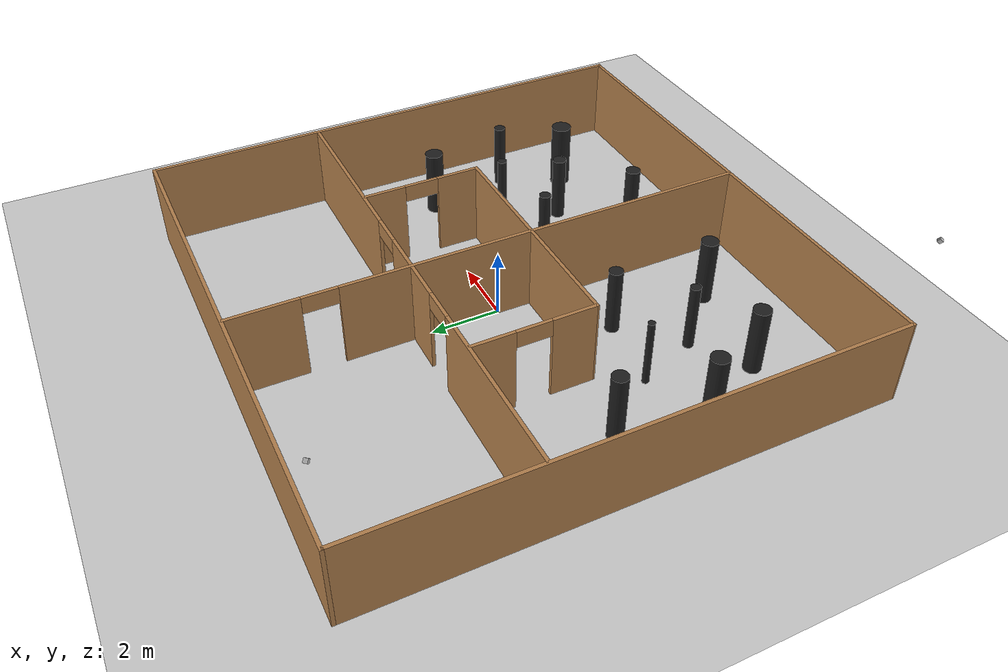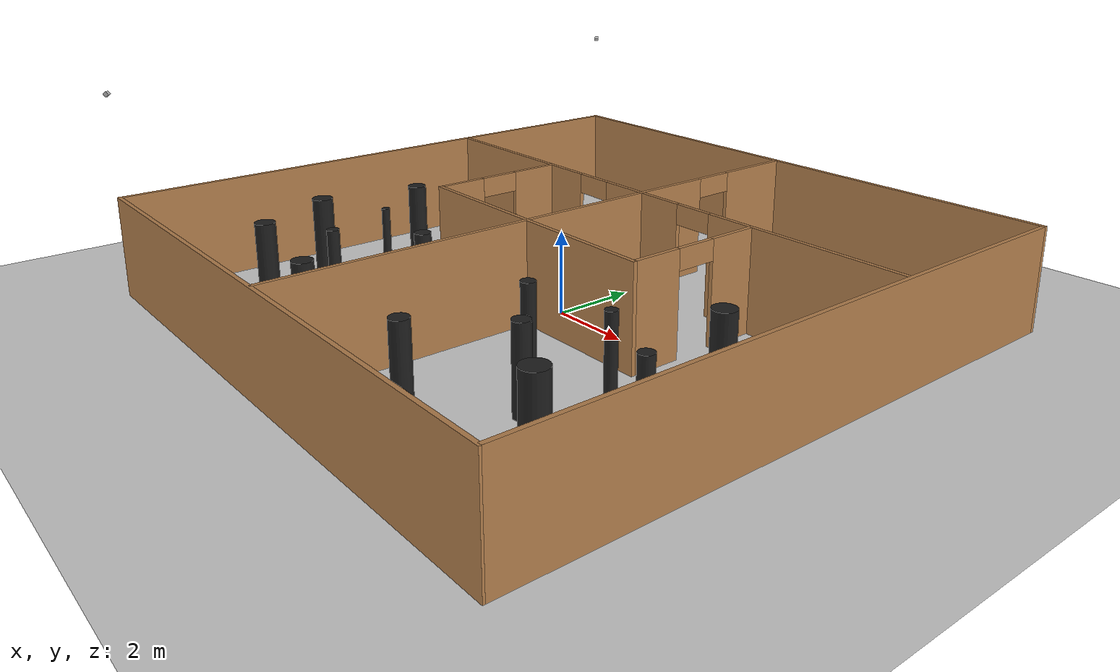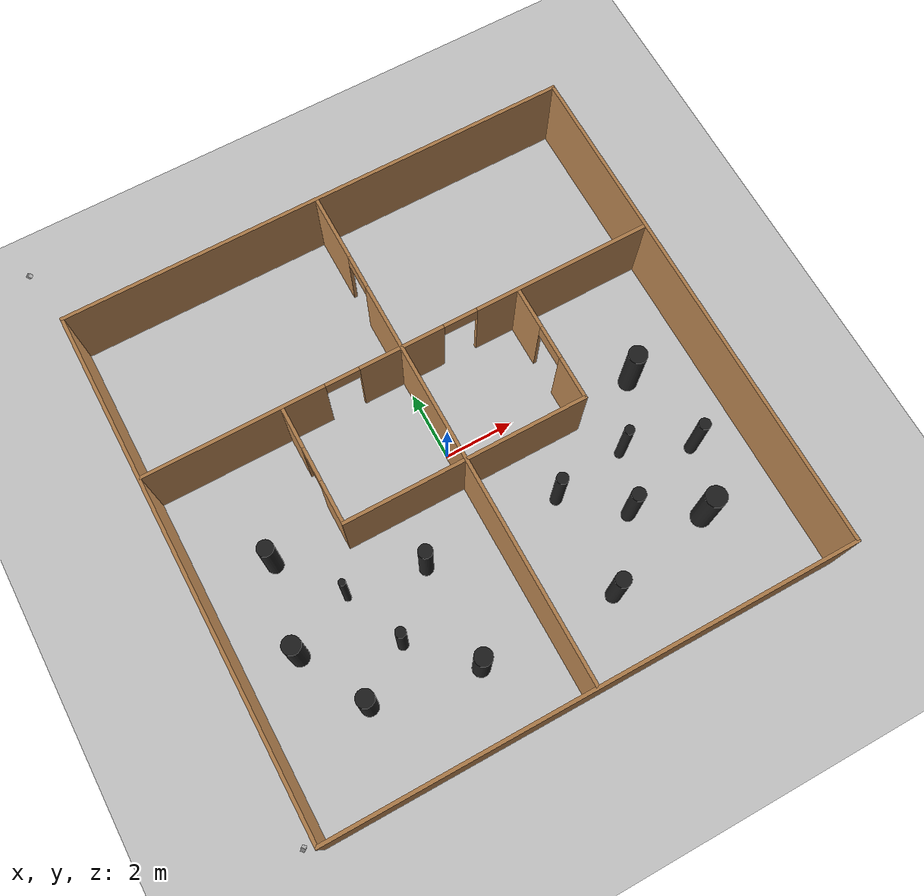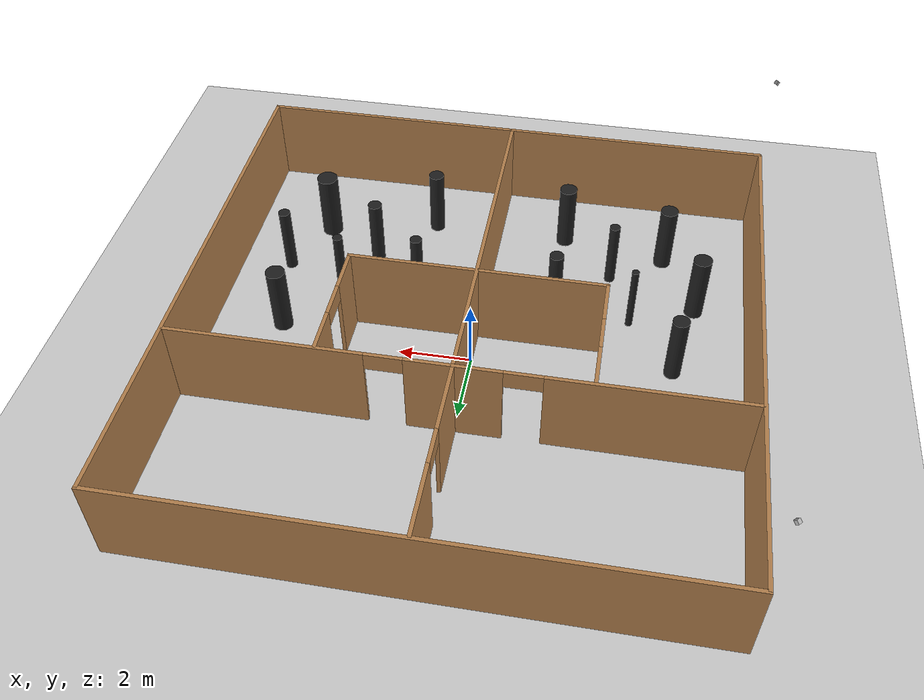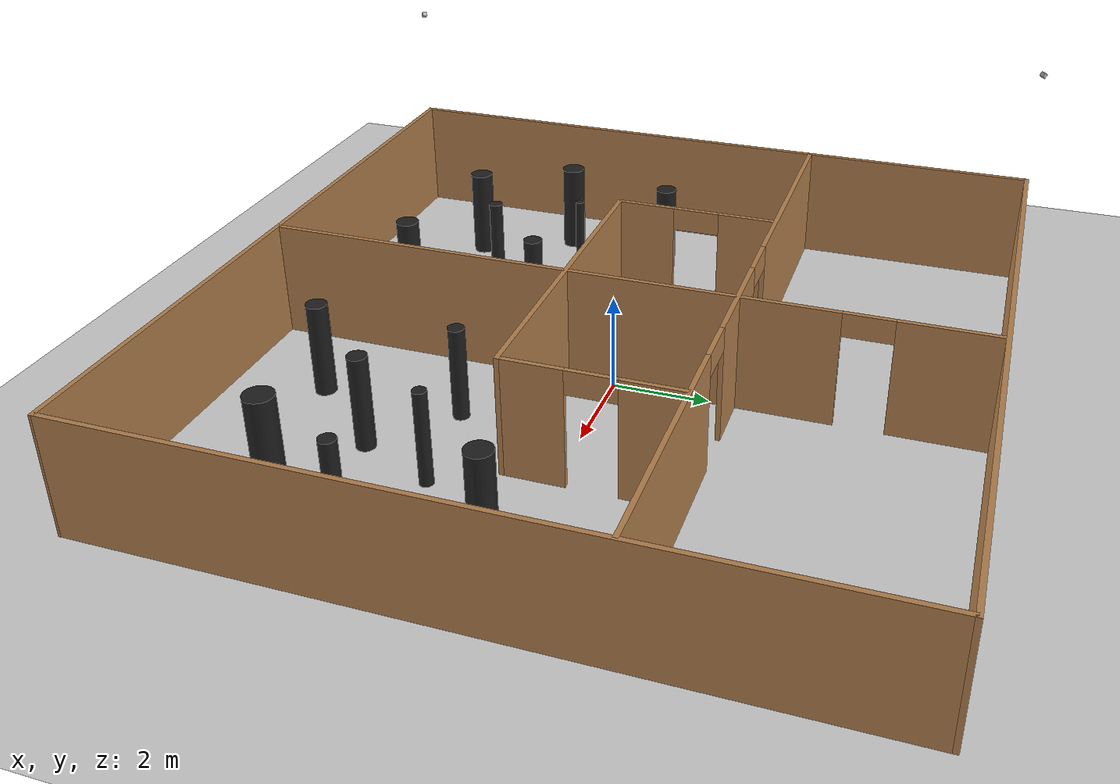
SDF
<sdf version="1.6">
 <world name="default">
  <model name="ground_plane">
   <static>1</static>
   <link name="link">
    <collision name="collision">
     <geometry><plane><normal>0 0 1</normal><size>100 100</size></plane></geometry>
     <surface><friction><ode><mu>100</mu><mu2>50</mu2></ode></friction></surface>
    </collision>
    <visual name="visual">
     <cast_shadows>0</cast_shadows>
     <geometry><plane><normal>0 0 1</normal><size>100 100</size></plane></geometry>
     <material>
      <script><uri>file://media/materials/scripts/gazebo.material</uri><name>Gazebo/Grey</name></script>
     </material>
    </visual>
   </link>
  </model>
  <model name="building">
   <link name="Wall_0">
    <collision name="Wall_0_Collision">
     <geometry><box><size>15.1 0.1 2.5</size></box></geometry>
     <pose>0 0 1.25 0 -0 0</pose>
    </collision>
    <visual name="Wall_0_Visual">
     <pose>0 0 1.25 0 -0 0</pose>
     <geometry><box><size>15.1 0.1 2.5</size></box></geometry>
     <material>
      <script><uri>file://media/materials/scripts/gazebo.material</uri><name>Gazebo/Wood</name></script>
      <ambient>1 1 1 1</ambient>
     </material>
     <meta><layer>0</layer></meta>
    </visual>
    <pose>0 -7.5 0 0 -0 0</pose>
   </link>
   <link name="Wall_1">
    <collision name="Wall_1_Collision">
     <geometry><box><size>15 0.1 2.5</size></box></geometry>
     <pose>0 0 1.25 0 -0 0</pose>
    </collision>
    <visual name="Wall_1_Visual">
     <pose>0 0 1.25 0 -0 0</pose>
     <geometry><box><size>15 0.1 2.5</size></box></geometry>
     <material>
      <script><uri>file://media/materials/scripts/gazebo.material</uri><name>Gazebo/Wood</name></script>
      <ambient>1 1 1 1</ambient>
     </material>
     <meta><layer>0</layer></meta>
    </visual>
    <pose>7.5 0 0 0 -0 1.5708</pose>
   </link>
   <link name="Wall_10">
    <collision name="Wall_10_Collision">
     <geometry><box><size>7.1 0.1 2.5</size></box></geometry>
     <pose>0 0 1.25 0 -0 0</pose>
    </collision>
    <visual name="Wall_10_Visual">
     <pose>0 0 1.25 0 -0 0</pose>
     <geometry><box><size>7.1 0.1 2.5</size></box></geometry>
     <material>
      <script><uri>file://media/materials/scripts/gazebo.material</uri><name>Gazebo/Wood</name></script>
      <ambient>1 1 1 1</ambient>
     </material>
     <meta><layer>0</layer></meta>
    </visual>
    <pose>0 -1 0 0 -0 0</pose>
   </link>
   <link name="Wall_15a">
    <collision name="Wall_15a_Collision">
     <geometry><box><size>1.25 0.1 2.5</size></box></geometry>
     <pose>0 0 1.25 0 -0 0</pose>
    </collision>
    <visual name="Wall_15a_Visual">
     <pose>0 0 1.25 0 -0 0</pose>
     <geometry><box><size>1.25 0.1 2.5</size></box></geometry>
     <material>
      <script><uri>file://media/materials/scripts/gazebo.material</uri><name>Gazebo/Wood</name></script>
      <ambient>1 1 1 1</ambient>
     </material>
     <meta><layer>0</layer></meta>
    </visual>
    <pose>3.5 1.875 0 0 -0 -1.5708</pose>
   </link>
   <link name="Wall_15b">
    <collision name="Wall_15b_Collision">
     <geometry><box><size>1.25 0.1 2.5</size></box></geometry>
     <pose>0 0 1.25 0 -0 0</pose>
    </collision>
    <visual name="Wall_15b_Visual">
     <pose>0 0 1.25 0 -0 0</pose>
     <geometry><box><size>1.25 0.1 2.5</size></box></geometry>
     <material>
      <script><uri>file://media/materials/scripts/gazebo.material</uri><name>Gazebo/Wood</name></script>
      <ambient>1 1 1 1</ambient>
     </material>
     <meta><layer>0</layer></meta>
    </visual>
    <pose>3.5 -0.375 0 0 -0 -1.5708</pose>
   </link>
   <link name="Wall_15c">
    <collision name="Wall_15c_Collision">
     <geometry><box><size>1.0 0.1 0.5</size></box></geometry>
     <pose>0 0 2.25 0 -0 0</pose>
    </collision>
    <visual name="Wall_15c_Visual">
     <pose>0 0 2.25 0 -0 0</pose>
     <geometry><box><size>1.0 0.1 0.5</size></box></geometry>
     <material>
      <script><uri>file://media/materials/scripts/gazebo.material</uri><name>Gazebo/Wood</name></script>
      <ambient>1 1 1 1</ambient>
     </material>
     <meta><layer>0</layer></meta>
    </visual>
    <pose>3.5 0.75 0 0 -0 -1.5708</pose>
   </link>
   <link name="Wall_17a">
    <collision name="Wall_17a_Collision">
     <geometry><box><size>5.25 0.1 2.5</size></box></geometry>
     <pose>0 0 1.25 0 -0 0</pose>
    </collision>
    <visual name="Wall_17a_Visual">
     <pose>0 0 1.25 0 -0 0</pose>
     <geometry><box><size>5.25 0.1 2.5</size></box></geometry>
     <material>
      <script><uri>file://media/materials/scripts/gazebo.material</uri><name>Gazebo/Wood</name></script>
      <ambient>1 1 1 1</ambient>
     </material>
     <meta><layer>0</layer></meta>
    </visual>
    <pose>-4.875 2.5 0 0 -0 0</pose>
   </link>
   <link name="Wall_17b">
    <collision name="Wall_17b_Collision">
     <geometry><box><size>5.25 0.1 2.5</size></box></geometry>
     <pose>0 0 1.25 0 -0 0</pose>
    </collision>
    <visual name="Wall_17b_Visual">
     <pose>0 0 1.25 0 -0 0</pose>
     <geometry><box><size>5.25 0.1 2.5</size></box></geometry>
     <material>
      <script><uri>file://media/materials/scripts/gazebo.material</uri><name>Gazebo/Wood</name></script>
      <ambient>1 1 1 1</ambient>
     </material>
     <meta><layer>0</layer></meta>
    </visual>
    <pose>4.875 2.5 0 0 -0 0</pose>
   </link>
   <link name="Wall_17c">
    <collision name="Wall_17c_Collision">
     <geometry><box><size>2.5 0.1 2.5</size></box></geometry>
     <pose>0 0 1.25 0 -0 0</pose>
    </collision>
    <visual name="Wall_17c_Visual">
     <pose>0 0 1.25 0 -0 0</pose>
     <geometry><box><size>2.5 0.1 2.5</size></box></geometry>
     <material>
      <script><uri>file://media/materials/scripts/gazebo.material</uri><name>Gazebo/Wood</name></script>
      <ambient>1 1 1 1</ambient>
     </material>
     <meta><layer>0</layer></meta>
    </visual>
    <pose>0 2.5 0 0 -0 0</pose>
   </link>
   <link name="Wall_17d">
    <collision name="Wall_17d_Collision">
     <geometry><box><size>1 0.1 0.5</size></box></geometry>
     <pose>0 0 2.25 0 -0 0</pose>
    </collision>
    <visual name="Wall_17d_Visual">
     <pose>0 0 2.25 0 -0 0</pose>
     <geometry><box><size>1 0.1 0.5</size></box></geometry>
     <material>
      <script><uri>file://media/materials/scripts/gazebo.material</uri><name>Gazebo/Wood</name></script>
      <ambient>1 1 1 1</ambient>
     </material>
     <meta><layer>0</layer></meta>
    </visual>
    <pose>-1.75 2.5 0 0 -0 0</pose>
   </link>
   <link name="Wall_17e">
    <collision name="Wall_17e_Collision">
     <geometry><box><size>1 0.1 0.5</size></box></geometry>
     <pose>0 0 2.25 0 -0 0</pose>
    </collision>
    <visual name="Wall_17e_Visual">
     <pose>0 0 2.25 0 -0 0</pose>
     <geometry><box><size>1 0.1 0.5</size></box></geometry>
     <material>
      <script><uri>file://media/materials/scripts/gazebo.material</uri><name>Gazebo/Wood</name></script>
      <ambient>1 1 1 1</ambient>
     </material>
     <meta><layer>0</layer></meta>
    </visual>
    <pose>1.75 2.5 0 0 -0 0</pose>
   </link>
   <link name="Wall_2">
    <collision name="Wall_2_Collision">
     <geometry><box><size>15.1 0.1 2.5</size></box></geometry>
     <pose>0 0 1.25 0 -0 0</pose>
    </collision>
    <visual name="Wall_2_Visual">
     <pose>0 0 1.25 0 -0 0</pose>
     <geometry><box><size>15.1 0.1 2.5</size></box></geometry>
     <material>
      <script><uri>file://media/materials/scripts/gazebo.material</uri><name>Gazebo/Wood</name></script>
      <ambient>1 1 1 1</ambient>
     </material>
     <meta><layer>0</layer></meta>
    </visual>
    <pose>0 7.5 0 0 -0 3.14159</pose>
   </link>
   <link name="Wall_3">
    <collision name="Wall_3_Collision">
     <geometry><box><size>15 0.1 2.5</size></box></geometry>
     <pose>0 0 1.25 0 -0 0</pose>
    </collision>
    <visual name="Wall_3_Visual">
     <pose>0 0 1.25 0 -0 0</pose>
     <geometry><box><size>15 0.1 2.5</size></box></geometry>
     <material>
      <script><uri>file://media/materials/scripts/gazebo.material</uri><name>Gazebo/Wood</name></script>
      <ambient>1 1 1 1</ambient>
     </material>
     <meta><layer>0</layer></meta>
    </visual>
    <pose>-7.5 0 0 0 -0 -1.5708</pose>
   </link>
   <link name="Wall_5a">
    <collision name="Wall_5a_Collision">
     <geometry><box><size>12 0.1 2.5</size></box></geometry>
     <pose>0 0 1.25 0 -0 0</pose>
    </collision>
    <visual name="Wall_5a_Visual">
     <pose>0 0 1.25 0 -0 0</pose>
     <geometry><box><size>12 0.1 2.5</size></box></geometry>
     <material>
      <script><uri>file://media/materials/scripts/gazebo.material</uri><name>Gazebo/Wood</name></script>
      <ambient>1 1 1 1</ambient>
     </material>
     <meta><layer>0</layer></meta>
    </visual>
    <pose>-0 -1.5 0 0 -0 -1.5708</pose>
   </link>
   <link name="Wall_5b">
    <collision name="Wall_5b_Collision">
     <geometry><box><size>2 0.1 2.5</size></box></geometry>
     <pose>0 0 1.25 0 -0 0</pose>
    </collision>
    <visual name="Wall_5b_Visual">
     <pose>0 0 1.25 0 -0 0</pose>
     <geometry><box><size>2 0.1 2.5</size></box></geometry>
     <material>
      <script><uri>file://media/materials/scripts/gazebo.material</uri><name>Gazebo/Wood</name></script>
      <ambient>1 1 1 1</ambient>
     </material>
     <meta><layer>0</layer></meta>
    </visual>
    <pose>-0 6.5 0 0 -0 -1.5708</pose>
   </link>
   <link name="Wall_5c">
    <collision name="Wall_5c_Collision">
     <geometry><box><size>1 0.1 0.5</size></box></geometry>
     <pose>0 0 2.25 0 -0 0</pose>
    </collision>
    <visual name="Wall_5c_Visual">
     <pose>0 0 2.25 0 -0 0</pose>
     <geometry><box><size>1 0.1 0.5</size></box></geometry>
     <material>
      <script><uri>file://media/materials/scripts/gazebo.material</uri><name>Gazebo/Wood</name></script>
      <ambient>1 1 1 1</ambient>
     </material>
     <meta><layer>0</layer></meta>
    </visual>
    <pose>-0 5.0 0 0 -0 -1.5708</pose>
   </link>
   <link name="Wall_9a">
    <collision name="Wall_9a_Collision">
     <geometry><box><size>1.25 0.1 2.5</size></box></geometry>
     <pose>0 0 1.25 0 -0 0</pose>
    </collision>
    <visual name="Wall_9a_Visual">
     <pose>0 0 1.25 0 -0 0</pose>
     <geometry><box><size>1.25 0.1 2.5</size></box></geometry>
     <material>
      <script><uri>file://media/materials/scripts/gazebo.material</uri><name>Gazebo/Wood</name></script>
      <ambient>1 1 1 1</ambient>
     </material>
     <meta><layer>0</layer></meta>
    </visual>
    <pose>-3.5 1.875 0 0 -0 -1.5708</pose>
   </link>
   <link name="Wall_9b">
    <collision name="Wall_9b_Collision">
     <geometry><box><size>1.25 0.1 2.5</size></box></geometry>
     <pose>0 0 1.25 0 -0 0</pose>
    </collision>
    <visual name="Wall_9b_Visual">
     <pose>0 0 1.25 0 -0 0</pose>
     <geometry><box><size>1.25 0.1 2.5</size></box></geometry>
     <material>
      <script><uri>file://media/materials/scripts/gazebo.material</uri><name>Gazebo/Wood</name></script>
      <ambient>1 1 1 1</ambient>
     </material>
     <meta><layer>0</layer></meta>
    </visual>
    <pose>-3.5 -0.375 0 0 -0 -1.5708</pose>
   </link>
   <link name="Wall_9c">
    <collision name="Wall_9c_Collision">
     <geometry><box><size>1.0 0.1 0.5</size></box></geometry>
     <pose>0 0 2.25 0 -0 0</pose>
    </collision>
    <visual name="Wall_9c_Visual">
     <pose>0 0 2.25 0 -0 0</pose>
     <geometry><box><size>1.0 0.1 0.5</size></box></geometry>
     <material>
      <script><uri>file://media/materials/scripts/gazebo.material</uri><name>Gazebo/Wood</name></script>
      <ambient>1 1 1 1</ambient>
     </material>
     <meta><layer>0</layer></meta>
    </visual>
    <pose>-3.5 0.75 0 0 -0 -1.5708</pose>
   </link>
   <static>1</static>
  </model>
  <model name="cylinder_1">
   <link name="link_0">
    <pose>-5 -5 1 0 -0 0</pose>
    <visual name="visual">
     <geometry><cylinder><radius>0.25</radius><length>2</length></cylinder></geometry>
     <material>
      <lighting>1</lighting>
      <script><uri>file://media/materials/scripts/gazebo.material</uri><name>Gazebo/Black</name></script>
      <shader type="pixel"/>
     </material>
    </visual>
    <collision name="collision">
     <geometry><cylinder><radius>0.25</radius><length>2</length></cylinder></geometry>
    </collision>
   </link>
   <static>1</static>
  </model>
  <model name="cylinder_2">
   <link name="link_0">
    <pose>-3.5 -4 1 0 -0 0</pose>
    <visual name="visual">
     <geometry><cylinder><radius>0.15</radius><length>2</length></cylinder></geometry>
     <material>
      <lighting>1</lighting>
      <script><uri>file://media/materials/scripts/gazebo.material</uri><name>Gazebo/Black</name></script>
      <shader type="pixel"/>
     </material>
    </visual>
    <collision name="collision">
     <geometry><cylinder><radius>0.15</radius><length>2</length></cylinder></geometry>
    </collision>
   </link>
   <static>1</static>
  </model>
  <model name="cylinder_3">
   <link name="link_0">
    <pose>-6 -3 1 0 -0 0</pose>
    <visual name="visual">
     <geometry><cylinder><radius>0.26</radius><length>2</length></cylinder></geometry>
     <material>
      <lighting>1</lighting>
      <script><uri>file://media/materials/scripts/gazebo.material</uri><name>Gazebo/Black</name></script>
      <shader type="pixel"/>
     </material>
    </visual>
    <collision name="collision">
     <geometry><cylinder><radius>0.26</radius><length>2</length></cylinder></geometry>
    </collision>
   </link>
   <static>1</static>
  </model>
  <model name="cylinder_4">
   <link name="link_0">
    <pose>-2 -5.5 1 0 -0 0</pose>
    <visual name="visual">
     <geometry><cylinder><radius>0.25</radius><length>2</length></cylinder></geometry>
     <material>
      <lighting>1</lighting>
      <script><uri>file://media/materials/scripts/gazebo.material</uri><name>Gazebo/Black</name></script>
      <shader type="pixel"/>
     </material>
    </visual>
    <collision name="collision">
     <geometry><cylinder><radius>0.25</radius><length>2</length></cylinder></geometry>
    </collision>
   </link>
   <static>1</static>
  </model>
  <model name="cylinder_5">
   <link name="link_0">
    <pose>-5.5 -0.5 1 0 -0 0</pose>
    <visual name="visual">
     <geometry><cylinder><radius>0.23</radius><length>2</length></cylinder></geometry>
     <material>
      <lighting>1</lighting>
      <script><uri>file://media/materials/scripts/gazebo.material</uri><name>Gazebo/Black</name></script>
      <shader type="pixel"/>
     </material>
    </visual>
    <collision name="collision">
     <geometry><cylinder><radius>0.23</radius><length>2</length></cylinder></geometry>
    </collision>
   </link>
   <static>1</static>
  </model>
  <model name="cylinder_6">
   <link name="link_0">
    <pose>-2 -2.5 1 0 -0 0</pose>
    <visual name="visual">
     <geometry><cylinder><radius>0.2</radius><length>2</length></cylinder></geometry>
     <material>
      <lighting>1</lighting>
      <script><uri>file://media/materials/scripts/gazebo.material</uri><name>Gazebo/Black</name></script>
      <shader type="pixel"/>
     </material>
    </visual>
    <collision name="collision">
     <geometry><cylinder><radius>0.2</radius><length>2</length></cylinder></geometry>
    </collision>
   </link>
   <static>1</static>
  </model>
  <model name="cylinder_7">
   <link name="link_0">
    <pose>-4.2 -2.2 1 0 -0 0</pose>
    <visual name="visual">
     <geometry><cylinder><radius>0.1</radius><length>2</length></cylinder></geometry>
     <material>
      <lighting>1</lighting>
      <script><uri>file://media/materials/scripts/gazebo.material</uri><name>Gazebo/Black</name></script>
      <shader type="pixel"/>
     </material>
    </visual>
    <collision name="collision">
     <geometry><cylinder><radius>0.1</radius><length>2</length></cylinder></geometry>
    </collision>
   </link>
   <static>1</static>
  </model>
  <model name="cylinder_8">
   <link name="link_0">
    <pose>5.2 -4.8 1 0 -0 0</pose>
    <visual name="visual">
     <geometry><cylinder><radius>0.3</radius><length>2</length></cylinder></geometry>
     <material>
      <lighting>1</lighting>
      <script><uri>file://media/materials/scripts/gazebo.material</uri><name>Gazebo/Black</name></script>
      <shader type="pixel"/>
     </material>
    </visual>
    <collision name="collision">
     <geometry><cylinder><radius>0.3</radius><length>2</length></cylinder></geometry>
    </collision>
   </link>
   <static>1</static>
  </model>
  <model name="cylinder_9">
   <link name="link_0">
    <pose>3.5 -3.8 1 0 -0 0</pose>
    <visual name="visual">
     <geometry><cylinder><radius>0.2</radius><length>2</length></cylinder></geometry>
     <material>
      <lighting>1</lighting>
      <script><uri>file://media/materials/scripts/gazebo.material</uri><name>Gazebo/Black</name></script>
      <shader type="pixel"/>
     </material>
    </visual>
    <collision name="collision">
     <geometry><cylinder><radius>0.2</radius><length>2</length></cylinder></geometry>
    </collision>
   </link>
   <static>1</static>
  </model>
  <model name="cylinder_10">
   <link name="link_0">
    <pose>6 -3 1 0 -0 0</pose>
    <visual name="visual">
     <geometry><cylinder><radius>0.17</radius><length>2</length></cylinder></geometry>
     <material>
      <lighting>1</lighting>
      <script><uri>file://media/materials/scripts/gazebo.material</uri><name>Gazebo/Black</name></script>
      <shader type="pixel"/>
     </material>
    </visual>
    <collision name="collision">
     <geometry><cylinder><radius>0.17</radius><length>2</length></cylinder></geometry>
    </collision>
   </link>
   <static>1</static>
  </model>
  <model name="cylinder_11">
   <link name="link_0">
    <pose>2 -5.5 1 0 -0 0</pose>
    <visual name="visual">
     <geometry><cylinder><radius>0.22</radius><length>2</length></cylinder></geometry>
     <material>
      <lighting>1</lighting>
      <script><uri>file://media/materials/scripts/gazebo.material</uri><name>Gazebo/Black</name></script>
      <shader type="pixel"/>
     </material>
    </visual>
    <collision name="collision">
     <geometry><cylinder><radius>0.22</radius><length>2</length></cylinder></geometry>
    </collision>
   </link>
   <static>1</static>
  </model>
  <model name="cylinder_12">
   <link name="link_0">
    <pose>5.5 -0.5 1 0 -0 0</pose>
    <visual name="visual">
     <geometry><cylinder><radius>0.27</radius><length>2</length></cylinder></geometry>
     <material>
      <lighting>1</lighting>
      <script><uri>file://media/materials/scripts/gazebo.material</uri><name>Gazebo/Black</name></script>
      <shader type="pixel"/>
     </material>
    </visual>
    <collision name="collision">
     <geometry><cylinder><radius>0.27</radius><length>2</length></cylinder></geometry>
    </collision>
   </link>
   <static>1</static>
  </model>
  <model name="cylinder_13">
   <link name="link_0">
    <pose>2 -2.5 1 0 -0 0</pose>
    <visual name="visual">
     <geometry><cylinder><radius>0.17</radius><length>2</length></cylinder></geometry>
     <material>
      <lighting>1</lighting>
      <script><uri>file://media/materials/scripts/gazebo.material</uri><name>Gazebo/Black</name></script>
      <shader type="pixel"/>
     </material>
    </visual>
    <collision name="collision">
     <geometry><cylinder><radius>0.17</radius><length>2</length></cylinder></geometry>
    </collision>
   </link>
   <static>1</static>
  </model>
  <model name="cylinder_14">
   <link name="link_0">
    <pose>4.2 -2.2 1 0 -0 0</pose>
    <visual name="visual">
     <geometry><cylinder><radius>0.14</radius><length>2</length></cylinder></geometry>
     <material>
      <lighting>1</lighting>
      <script><uri>file://media/materials/scripts/gazebo.material</uri><name>Gazebo/Black</name></script>
      <shader type="pixel"/>
     </material>
    </visual>
    <collision name="collision">
     <geometry><cylinder><radius>0.14</radius><length>2</length></cylinder></geometry>
    </collision>
   </link>
   <static>1</static>
  </model>
  <model name="camera1">
   <static>true</static>
   <pose>-7.5 -7.5 5 0 0.86 0.72</pose>
   <link name="link">
    <visual name="visual">
     <cast_shadows>0</cast_shadows>
     <geometry><box><size>0.1 0.1 0.1</size></box></geometry>
    </visual>
    <sensor name="my_camera" type="camera">
     <camera>
      <save enabled="true"><path>/home/kodlab/gazebo_camera_1</path></save>
      <horizontal_fov>1.5</horizontal_fov>
      <image><width>1920</width><height>1080</height></image>
      <clip><near>0.1</near><far>100</far></clip>
     </camera>
     <always_on>1</always_on>
     <update_rate>30</update_rate>
    </sensor>
   </link>
  </model>
  <model name="camera4">
   <static>true</static>
   <pose>-7.5 7.5 5 0 0.86 -0.72</pose>
   <link name="link">
    <visual name="visual">
     <cast_shadows>0</cast_shadows>
     <geometry><box><size>0.1 0.1 0.1</size></box></geometry>
    </visual>
    <sensor name="my_camera" type="camera">
     <camera>
      <save enabled="true"><path>/home/kodlab/gazebo_camera_4</path></save>
      <horizontal_fov>1.5</horizontal_fov>
      <image><width>1920</width><height>1080</height></image>
      <clip><near>0.1</near><far>100</far></clip>
     </camera>
     <always_on>1</always_on>
     <update_rate>30</update_rate>
    </sensor>
   </link>
  </model>
 </world>
</sdf>
